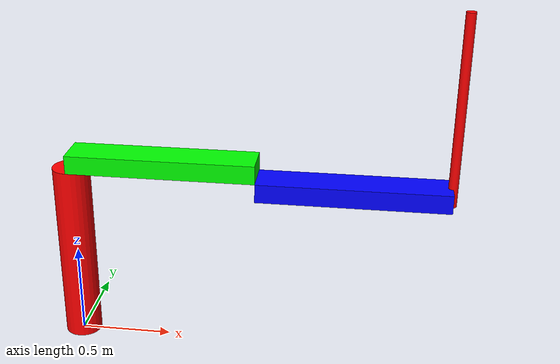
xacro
<?xml version="1.0"?>
<robot xmlns:xacro="http://wiki.ros.org/xacro" name="my_scara">

  <!-- parametry xacro -->
  <xacro:property name="wysokosc_bazy" value="1"/>
  <xacro:property name="promien_bazy" value="0.1"/>
  <xacro:property name="masa_bazy" value="10"/>
  <xacro:property name="dlugosc_ramienia_1" value="1"/>
  <xacro:property name="dlugosc_ramienia_2" value="1"/>
  <xacro:property name="szerokosc_ramienia" value="0.2"/>
  <xacro:property name="wysokosc_ramienia" value="0.1"/>
  <xacro:property name="masa_ramienia_1" value="10"/>
  <xacro:property name="masa_ramienia_2" value="10"/>
  <xacro:property name="dlugosc_kolumny" value="1"/>
  <xacro:property name="promien_kolumny" value="0.025"/>
  <xacro:property name="masa_kolumny" value="5"/>

  <!-- makra xacro -->
  <xacro:macro name="cylinder_inercja" params="m R L">
    <inertia ixx="${0.0833333*m*(3*R*R+L*L)}" ixy="0" ixz="0" iyy="${0.0833333*m*(3*R*R+L*L)}" iyz="0" izz="${0.5*m*R*R}"/>
  </xacro:macro>

  <xacro:macro name="pudelko_inercja" params="m x y z">
    <inertia ixx="${0.0833333*m*(y*y+z*z)}" ixy="0" ixz="0" iyy="${0.0833333*m*(x*x+z*z)}" iyz="0" izz="${0.0833333*m*(y*y+x*x)}"/>
  </xacro:macro>

  <!-- materialy -->
  <material name="red">
    <color rgba="1.0 0.0 0.0 1.0"/>
  </material>

  <material name="green">
    <color rgba="0.0 1.0 0.0 1.0"/>
  </material>

  <material name="blue">
    <color rgba="0.0 0.0 1.0 1.0"/>
  </material>

  <!-- czlony -->
  <link name="base_link">
    <visual>
      <geometry>
        <cylinder length="${wysokosc_bazy}" radius="${promien_bazy}"/>
      </geometry>
      <origin rpy="0 0 0" xyz="0 0 ${wysokosc_bazy/2}"/>
      <material name="red"/>
    </visual>
    <collision>
      <geometry>
        <cylinder length="${wysokosc_bazy}" radius="${promien_bazy}"/>
      </geometry>
      <origin rpy="0 0 0" xyz="0 0 ${wysokosc_bazy/2}"/>
    </collision>
    <inertial>
      <origin rpy="0 0 0" xyz="0 0 ${wysokosc_bazy/2}"/>
      <mass value="${masa_bazy}"/>
      <xacro:cylinder_inercja m="${masa_bazy}" R="${promien_bazy}" L="${wysokosc_bazy}"/>
    </inertial>
  </link>

  <link name="arm_link">
    <visual>
      <geometry>
        <box size="${dlugosc_ramienia_1} ${szerokosc_ramienia} ${wysokosc_ramienia}"/>
      </geometry>
      <origin rpy="0 0 0" xyz="${dlugosc_ramienia_1/2} 0 ${wysokosc_ramienia/2}"/>
      <material name="green"/>
    </visual>
    <collision>
      <geometry>
        <box size="${dlugosc_ramienia_1} ${szerokosc_ramienia} ${wysokosc_ramienia}"/>
      </geometry>
      <origin rpy="0 0 0" xyz="${dlugosc_ramienia_1/2} 0 ${wysokosc_ramienia/2}"/>
    </collision>
    <inertial>
      <origin rpy="0 0 0" xyz="${dlugosc_ramienia_1/2} 0 ${wysokosc_ramienia/2}"/>
      <mass value="${masa_ramienia_1}"/>
      <xacro:pudelko_inercja m="${masa_ramienia_1}" x="${dlugosc_ramienia_1}" y="${szerokosc_ramienia}" z="${wysokosc_ramienia}"/>
    </inertial>
  </link>

  <link name="forearm_link">
    <visual>
      <geometry>
        <box size="${dlugosc_ramienia_2} ${szerokosc_ramienia} ${wysokosc_ramienia}"/>
      </geometry>
      <origin rpy="0 0 0" xyz="${dlugosc_ramienia_2/2} 0 ${wysokosc_ramienia/2}"/>
      <material name="blue"/>
    </visual>
    <collision>
      <geometry>
        <box size="${dlugosc_ramienia_2} ${szerokosc_ramienia} ${wysokosc_ramienia}"/>
      </geometry>
      <origin rpy="0 0 0" xyz="${dlugosc_ramienia_2/2} 0 ${wysokosc_ramienia/2}"/>
    </collision>
    <inertial>
      <origin rpy="0 0 0" xyz="${dlugosc_ramienia_2/2} 0 ${wysokosc_ramienia/2}"/>
      <mass value="${masa_ramienia_2}"/>
      <xacro:pudelko_inercja m="${masa_ramienia_2}" x="${dlugosc_ramienia_2}" y="${szerokosc_ramienia}" z="${wysokosc_ramienia}"/>
    </inertial>
  </link>

  <link name="column_link">
    <visual>
      <geometry>
        <cylinder length="${dlugosc_kolumny}" radius="${promien_kolumny}"/>
      </geometry>
      <origin rpy="0 0 0" xyz="0 0 ${-dlugosc_kolumny/2}"/>
      <material name="red"/>
    </visual>
    <collision>
      <geometry>
        <cylinder length="${dlugosc_kolumny}" radius="${promien_kolumny}"/>
      </geometry>
      <origin rpy="0 0 0" xyz="0 0 ${-dlugosc_kolumny/2}"/>
    </collision>
    <inertial>
      <origin rpy="0 0 0" xyz="0 0 ${-dlugosc_kolumny/2}"/>
      <mass value="${masa_kolumny}"/>
      <xacro:cylinder_inercja m="${masa_kolumny}" R="${promien_kolumny}" L="${dlugosc_kolumny}"/>
    </inertial>
  </link>

  <!-- zlacza -->
  <joint name="shoulder_joint" type="revolute">
    <parent link="base_link"/>
    <child link="arm_link"/>
    <axis xyz="0 0 1"/>
    <origin rpy="0 0 0" xyz="0 0 1"/>
    <limit effort="1000.0" lower="-6.28" upper="6.28" velocity="1.0"/>
  </joint>

  <joint name="elbow_joint" type="revolute">
    <parent link="arm_link"/>
    <child link="forearm_link"/>
    <axis xyz="0 0 1"/>
    <origin rpy="0 0 0" xyz="1 0 -0.1"/>
    <limit effort="1000.0" lower="-6.28" upper="6.28" velocity="1.0"/>
  </joint>

  <joint name="wrist_joint" type="prismatic">
    <parent link="forearm_link"/>
    <child link="column_link"/>
    <axis xyz="0 0 1"/>
    <origin rpy="3.1416 0 0" xyz="1 0 0"/>
    <limit effort="1000.0" lower="0" upper="0.9" velocity="10.0"/>
  </joint>

</robot>
